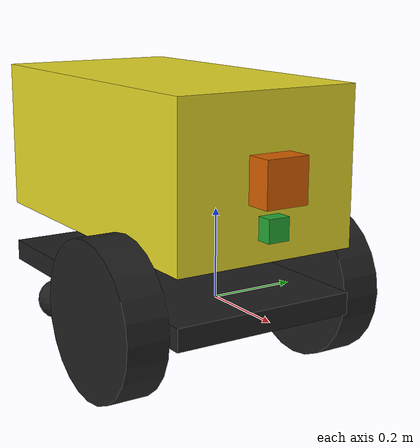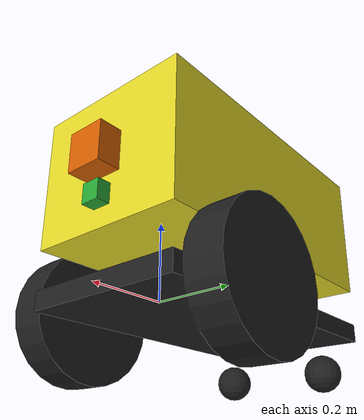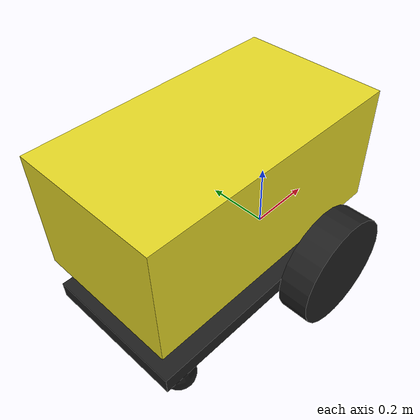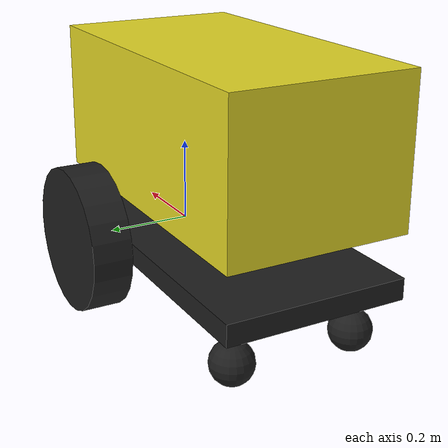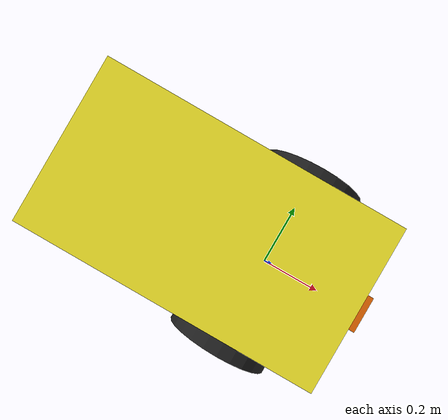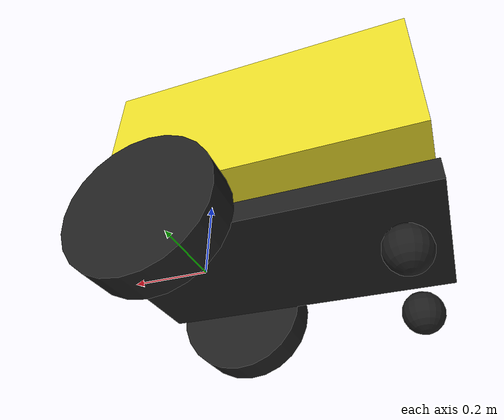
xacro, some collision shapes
<?xml version='1.0'?>

<robot name="quantum" xmlns:xacro="http://www.ros.org/wiki/xacro">

  <xacro:property name="cameraSize" value="0.05"/>
  <xacro:property name="cameraMass" value="0.1"/>
  <xacro:property name="wheelradius" value="0.174"/>
  <xacro:property name="wheelwidth" value="0.095"/>
  <xacro:property name="wheelDistance" value="0.54"/>
  <xacro:property name="bodyLength" value="0.80"/>
  <xacro:property name="casterRadius" value="0.05"/>

  <xacro:include filename="$(find tobor_description)/urdf/tobor.gazebo" />
  <xacro:include filename="$(find tobor_description)/urdf/materials.xacro" />
  <xacro:include filename="$(find tobor_description)/urdf/macros.xacro" />

  <link name='base_link'>
    <pose>0 0 0.1 0 0 0</pose>

    <collision name='collision'>
      <origin xyz="-.2 0 0" rpy=" 0 0 0"/>
      <geometry>
        <box size=".78 .43 .05"/>
      </geometry>
    </collision>
    <visual name='base_link_visual'>
      <origin xyz="-.2 0 0" rpy=" 0 0 0"/>
      <geometry>
        <box size=".78 .43 .05"/>
      </geometry>
    </visual>

    <collision name='left_caster_collision'>
      <origin xyz="-0.50 -0.15 -${wheelradius-casterRadius}" rpy=" 0 0 0"/>
      <geometry>
        <sphere radius="${casterRadius}"/>
      </geometry>
      <surface>
        <friction>
          <ode>
            <mu>0</mu>
            <mu2>0</mu2>
          </ode>
        </friction>
      </surface>
    </collision>
    <visual name='left_caster_visual'>
      <origin xyz="-0.50 -0.15 -0.12" rpy=" 0 0 0"/>
      <geometry>
        <sphere radius="${casterRadius}"/>
      </geometry>
    </visual>

    <collision name='right_caster_collision'>
        <origin xyz="-0.50 0.15 -0.12" rpy=" 0 0 0"/>
        <geometry>
          <sphere radius="${casterRadius}"/>
        </geometry>
        <surface>
          <friction>
            <ode>
              <mu>0</mu>
              <mu2>0</mu2>
            </ode>
          </friction>
        </surface>
      </collision>
    <visual name='right_caster_visual'>
      <origin xyz="-0.50 0.15 -0.12" rpy=" 0 0 0"/>
      <geometry>
        <sphere radius="${casterRadius}"/>
      </geometry>
    </visual>
  </link>

  <link name="left_wheel">
    <!--origin xyz="0.1 0.13 0.1" rpy="0 1.5707 1.5707"/-->
    <collision name="collision">
      <origin xyz="0 0 0" rpy="0 1.5707 1.5707"/>
      <geometry>
         <cylinder radius="${wheelradius}" length="${wheelwidth}"/>
      </geometry>
      <surface>
        <friction>
          <ode>
            <mu>30</mu>
            <mu2>30</mu2>
            <slip1>1.0</slip1>
            <slip2>1.0</slip2>
          </ode>
        </friction>
      </surface>
    </collision>
    <visual name="left_wheel_visual">
      <origin xyz="0 0 0" rpy="0 1.5707 1.5707"/>
      <geometry>
        <cylinder radius="${wheelradius}" length="${wheelwidth}"/>
      </geometry>
    </visual>
    <inertial>
      <origin xyz="0 0 0" rpy="0 1.5707 1.5707"/>
      <mass value="5"/>
      <inertia
        ixx=".1" ixy="0.0" ixz="0.0"
        iyy=".1" iyz="0.0"
        izz=".1"/>
    </inertial>
  </link>

  <link name="right_wheel">
    <!--origin xyz="0.1 -0.13 0.1" rpy="0 1.5707 1.5707"/-->
    <collision name="collision">
      <origin xyz="0 0 0" rpy="0 1.5707 1.5707"/>
      <geometry>
        <cylinder radius="${wheelradius}" length="${wheelwidth}"/>
      </geometry>
      <surface>
        <friction>
          <ode>
            <mu>30</mu>
            <mu2>30</mu2>
            <slip1>1.0</slip1>
            <slip2>1.0</slip2>
          </ode>
        </friction>
      </surface>
    </collision>
    <visual name="right_wheel_visual">
      <origin xyz="0 0 0" rpy="0 1.5707 1.5707"/>
      <geometry>
        <cylinder radius="${wheelradius}" length="${wheelwidth}"/>
      </geometry>
    </visual>
    <inertial>
      <origin xyz="0 0 0" rpy="0 1.5707 1.5707"/>
      <mass value="5"/>
      <inertia
        ixx=".1" ixy="0.0" ixz="0.0"
        iyy=".1" iyz="0.0"
        izz=".1"/>
    </inertial>
  </link>

  <joint type="continuous" name="left_wheel_hinge">
    <origin xyz="0.0 0.27 0" rpy="0 0 0"/>
    <!--origin xyz="0.1 0.13 0" rpy="0 1.5707 1.5707"/-->
    <child link="left_wheel"/>
    <parent link="base_link"/>
    <axis xyz="0 1 0" rpy="0 0 0"/>
    <limit effort="10000" velocity="1000"/>
    <joint_properties damping="1.0" friction="1.0"/>
  </joint>

  <joint type="continuous" name="right_wheel_hinge">
    <origin xyz="0.0 -0.27 0" rpy="0 0 0"/>
    <!--origin xyz="0.1 -0.13 0" rpy="0 1.5707 1.5707"/-->
    <child link="right_wheel"/>
    <parent link="base_link"/>
    <axis xyz="0 1 0" rpy="0 0 0"/>
    <limit effort="10000" velocity="1000"/>
    <joint_properties damping="1.0" friction="1.0"/>
  </joint>

  <link name="body">
    <!--origin xyz="0.1 -0.13 0.1" rpy="0 1.5707 1.5707"/-->
    <collision name="collision">
      <origin xyz="-.2 0 0.1" rpy=" 0 0 0"/>
      <geometry>
        <box size=".78 .43 .35"/>
      </geometry>
    </collision>
    <visual name="right_wheel_visual">
      <origin xyz="-.2 0 0.3" rpy=" 0 0 0"/>
      <geometry>
        <box size=".78 .43 .35"/>
      </geometry>
      <material name="yellow"/>
    </visual>
   <inertial>
      <mass value="5.0"/>
      <origin xyz="-.2 0 0" rpy=" 0 0 0"/>
      <inertia
          ixx="0.0937" ixy="0" ixz="0"
          iyy="0.27" iyz="0"
          izz="0.33"
      />
    </inertial>
  </link>

  <joint type="fixed" name="body_hinge">
    <origin xyz="0 0 0" rpy="0 0 0"/>
    <!--origin xyz="0.1 -0.13 0" rpy="0 1.5707 1.5707"/-->
    <child link="body"/>
    <parent link="base_link"/>
    <axis xyz="0 0 0" rpy="0 0 0"/>
  </joint>

  <link name="camera">
    <collision>
      <origin xyz="0 0 0" rpy="0 0 0"/>
      <geometry>
        <box size="${cameraSize} ${cameraSize} ${cameraSize}"/>
      </geometry>
    </collision>

    <visual>
      <origin xyz="0 0 0" rpy="0 0 0"/>
      <geometry>
        <box size="${cameraSize} ${cameraSize} ${cameraSize}"/>
      </geometry>
      <material name="green"/>
    </visual>

    <inertial>
      <mass value="${cameraMass}" />
      <origin xyz="0 0 0" rpy="0 0 0"/>
      <box_inertia m="${cameraMass}" x="${cameraSize}" y="${cameraSize}" z="${cameraSize}" />
      <inertia ixx="1e-6" ixy="0" ixz="0" iyy="1e-6" iyz="0" izz="1e-6" />
    </inertial>
  </link>

  <joint name="camera_joint" type="fixed">
    <axis xyz="0 1 0" />
    <origin xyz=".2 0 .2" rpy="0 0 0"/>
    <parent link="base_link"/>
    <child link="camera"/>
  </joint>

  <joint name="hokuyo_joint" type="fixed">
    <axis xyz="0 1 0" />
    <origin xyz=".2 0 .3" rpy="0 0 0"/>
    <parent link="base_link"/>
    <child link="hokuyo"/>
  </joint>

  <link name="hokuyo">
    <collision>
      <origin xyz="0 0 0" rpy="0 0 0"/>
      <geometry>
    <box size="0.1 0.1 0.1"/>
      </geometry>
    </collision>

    <visual>
      <origin xyz="0 0 0" rpy="0 0 0"/>
      <geometry>
        <mesh filename="package://tobor_description/meshes/hokuyo.dae"/>
      </geometry>
    </visual>

    <inertial>
      <mass value="1e-5" />
      <origin xyz="0 0 0" rpy="0 0 0"/>
      <inertia ixx="1e-6" ixy="0" ixz="0" iyy="1e-6" iyz="0" izz="1e-6" />
    </inertial>
  </link>

</robot>
